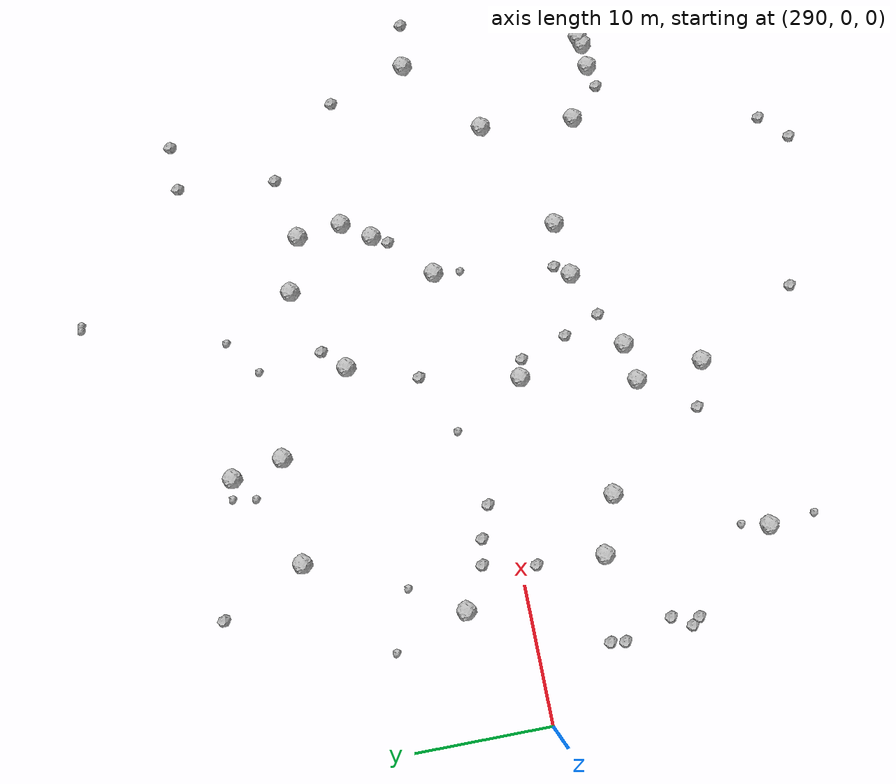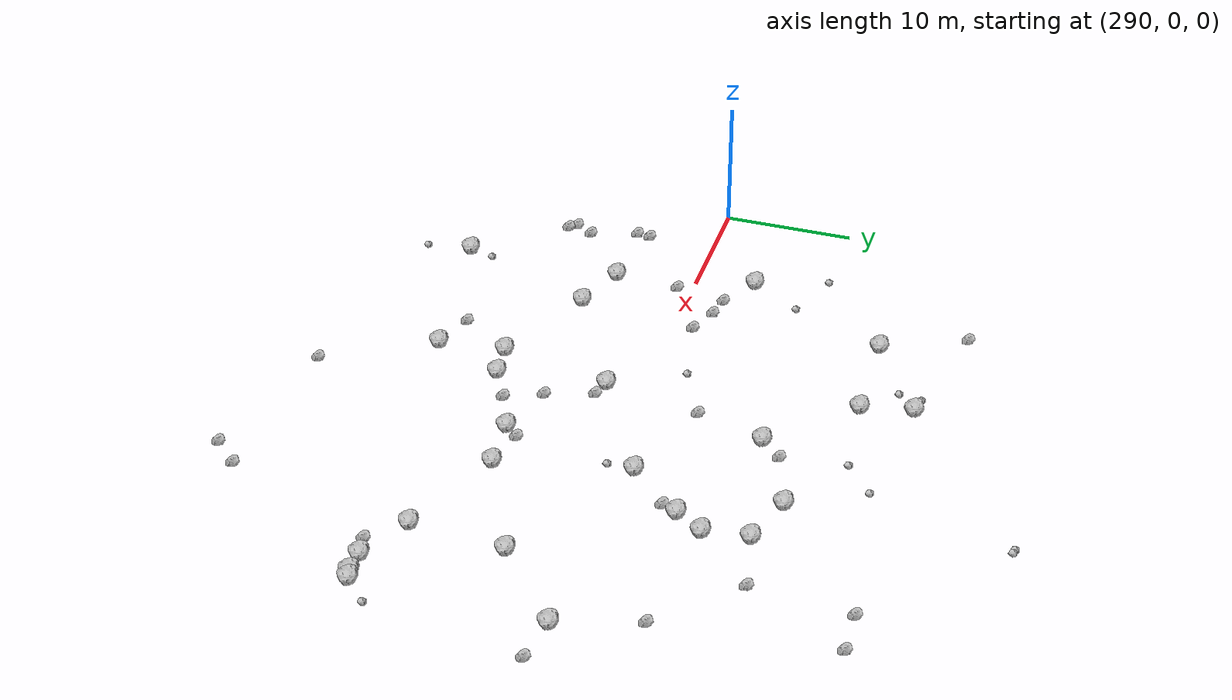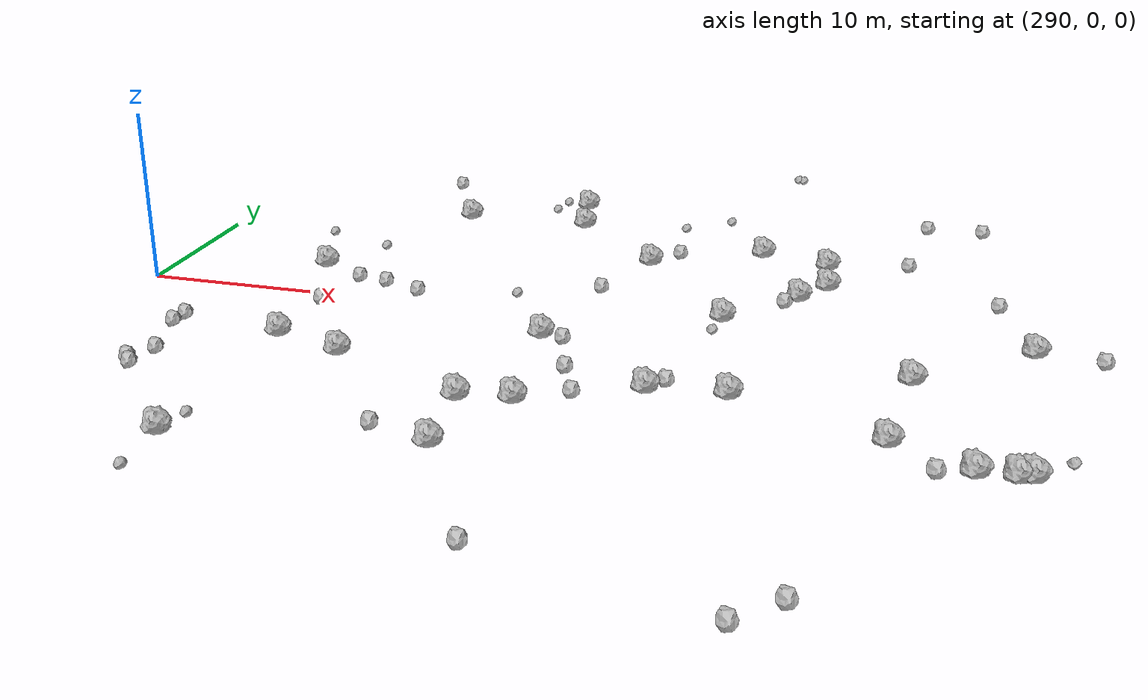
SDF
<sdf version="1.6">
 <world name="default">
  <include><uri>model://sun</uri></include>
  <model name="rock1_8_2">
   <include><uri>model://rock1</uri><pose>311.57835159520795 19.55722105199198 0.5 0 0 0</pose></include>
  </model>
  <model name="rock1_8_3">
   <include><uri>model://rock1</uri><pose>313.2291117161252 -11.161499316413451 0.5 0 0 0</pose></include>
  </model>
  <model name="rock1_8_4">
   <include><uri>model://rock1</uri><pose>324.1174505487467 2.1971228598309267 0.5 0 0 0</pose></include>
  </model>
  <model name="rock1_8_5">
   <include><uri>model://rock1</uri><pose>334.27996133699145 -10.702567122873855 0.5 0 0 0</pose></include>
  </model>
  <model name="rock1_8_6">
   <include><uri>model://rock1</uri><pose>316.06828683789007 -10.783402697122199 0.5 0 0 0</pose></include>
  </model>
  <model name="rock1_8_7">
   <include><uri>model://rock1</uri><pose>324.67889818562264 13.094487363727701 0.5 0 0 0</pose></include>
  </model>
  <model name="rock1_8_8">
   <include><uri>model://rock1</uri><pose>338.2995826673082 -12.690894569163067 0.5 0 0 0</pose></include>
  </model>
  <model name="rock1_8_9">
   <include><uri>model://rock1</uri><pose>322.0937932427368 -7.95614474470942 0.5 0 0 0</pose></include>
  </model>
  <model name="rock1_8_10">
   <include><uri>model://rock1</uri><pose>300.9559815260727 -18.301161767634337 0.5 0 0 0</pose></include>
  </model>
  <model name="rock1_8_11">
   <include><uri>model://rock1</uri><pose>299.07124221801564 4.505324784170888 0.5 0 0 0</pose></include>
  </model>
  <model name="rock1_8_12">
   <include><uri>model://rock1</uri><pose>340.9703815547611 1.5044408686055952 0.5 0 0 0</pose></include>
  </model>
  <model name="rock1_8_13">
   <include><uri>model://rock1</uri><pose>340.7935557446199 -12.482022723648342 0.5 0 0 0</pose></include>
  </model>
  <model name="rock1_8_14">
   <include><uri>model://rock1</uri><pose>334.9134456647022 -3.553613319131383 0.5 0 0 0</pose></include>
  </model>
  <model name="rock1_8_15">
   <include><uri>model://rock1</uri><pose>304.5488007572798 15.52112459571601 0.5 0 0 0</pose></include>
  </model>
  <model name="rock1_8_16">
   <include><uri>model://rock1</uri><pose>313.7616578368094 -16.206458737638684 0.5 0 0 0</pose></include>
  </model>
  <model name="rock1_8_17">
   <include><uri>model://rock1</uri><pose>312.3871483392803 15.72078147021773 0.5 0 0 0</pose></include>
  </model>
  <model name="rock1_8_18">
   <include><uri>model://rock1</uri><pose>326.23257900974215 -7.572836823037342 0.5 0 0 0</pose></include>
  </model>
  <model name="rock1_8_19">
   <include><uri>model://rock1</uri><pose>315.02530372839806 -2.6520002937793166 0.5 0 0 0</pose></include>
  </model>
  <model name="rock1_8_20">
   <include><uri>model://rock1</uri><pose>328.82959249619364 11.839115949814968 0.5 0 0 0</pose></include>
  </model>
  <model name="rock1_8_21">
   <include><uri>model://rock1</uri><pose>329.22630155711965 8.444324469955156 0.5 0 0 0</pose></include>
  </model>
  <model name="rock1_8_22">
   <include><uri>model://rock1</uri><pose>327.817141785299 6.318958988628886 0.5 0 0 0</pose></include>
  </model>
  <model name="rock1_8_23">
   <include><uri>model://rock1</uri><pose>340.1531281701098 -12.659864861376406 0.5 0 0 0</pose></include>
  </model>
  <model name="rock1_8_24">
   <include><uri>model://rock1</uri><pose>318.20441777976697 9.933972134757894 0.5 0 0 0</pose></include>
  </model>
  <model name="rock1_8_25">
   <include><uri>model://rock1</uri><pose>301.10237746381557 -6.123054633769019 0.5 0 0 0</pose></include>
  </model>
  <model name="rock1_8_26">
   <include><uri>model://rock1</uri><pose>305.27359189985856 -7.628806868054763 0.5 0 0 0</pose></include>
  </model>
  <model name="rock2_8_0">
   <include><uri>model://rock2</uri><pose>295.01455748524677 -11.272079228200099 0.3 0 0 0</pose></include>
  </model>
  <model name="rock2_8_1">
   <include><uri>model://rock2</uri><pose>302.0140105269651 2.7731917680378686 0.3 0 0 0</pose></include>
  </model>
  <model name="rock2_8_2">
   <include><uri>model://rock2</uri><pose>295.4980782524382 -11.864135936523322 0.3 0 0 0</pose></include>
  </model>
  <model name="rock2_8_3">
   <include><uri>model://rock2</uri><pose>316.3567206809599 -3.0540891874054097 0.3 0 0 0</pose></include>
  </model>
  <model name="rock2_8_4">
   <include><uri>model://rock2</uri><pose>316.4325081396206 4.746531709463454 0.3 0 0 0</pose></include>
  </model>
  <model name="rock2_8_5">
   <include><uri>model://rock2</uri><pose>318.1375639122092 -24.125515667498703 0.3 0 0 0</pose></include>
  </model>
  <model name="rock2_8_6">
   <include><uri>model://rock2</uri><pose>294.9399743149079 -5.208824186115894 0.3 0 0 0</pose></include>
  </model>
  <model name="rock2_8_7">
   <include><uri>model://rock2</uri><pose>338.98529024123803 7.532045932657411 0.3 0 0 0</pose></include>
  </model>
  <model name="rock2_8_8">
   <include><uri>model://rock2</uri><pose>322.9161894101615 -6.876335641737054 0.3 0 0 0</pose></include>
  </model>
  <model name="rock2_8_9">
   <include><uri>model://rock2</uri><pose>295.8551133966489 -9.86379385720647 0.3 0 0 0</pose></include>
  </model>
  <model name="rock2_8_10">
   <include><uri>model://rock2</uri><pose>329.73162015152656 -26.89534278747645 0.3 0 0 0</pose></include>
  </model>
  <model name="rock2_8_11">
   <include><uri>model://rock2</uri><pose>334.30571442387475 20.278650269794873 0.3 0 0 0</pose></include>
  </model>
  <model name="rock2_8_12">
   <include><uri>model://rock2</uri><pose>306.2062338320083 1.5162423449103173 0.3 0 0 0</pose></include>
  </model>
  <model name="rock2_8_13">
   <include><uri>model://rock2</uri><pose>331.65768525188827 -24.911392937811534 0.3 0 0 0</pose></include>
  </model>
  <model name="rock2_8_14">
   <include><uri>model://rock2</uri><pose>319.70688570341696 11.587097739647504 0.3 0 0 0</pose></include>
  </model>
  <model name="rock2_8_15">
   <include><uri>model://rock2</uri><pose>317.5225786143152 -6.604125893467881 0.3 0 0 0</pose></include>
  </model>
  <model name="rock2_8_16">
   <include><uri>model://rock2</uri><pose>327.14413533225155 5.1671760616130555 0.3 0 0 0</pose></include>
  </model>
  <model name="rock2_8_17">
   <include><uri>model://rock2</uri><pose>310.39037596265916 -15.153249658099238 0.3 0 0 0</pose></include>
  </model>
  <model name="rock2_8_18">
   <include><uri>model://rock2</uri><pose>303.86119196040823 2.425552351076533 0.3 0 0 0</pose></include>
  </model>
  <model name="rock2_8_19">
   <include><uri>model://rock2</uri><pose>336.5625476786617 -13.0532562964977 0.3 0 0 0</pose></include>
  </model>
  <model name="rock2_8_20">
   <include><uri>model://rock2</uri><pose>337.76049039540885 20.368911293906343 0.3 0 0 0</pose></include>
  </model>
  <model name="rock2_8_21">
   <include><uri>model://rock2</uri><pose>333.60236144049753 12.83214036785553 0.3 0 0 0</pose></include>
  </model>
  <model name="rock2_8_22">
   <include><uri>model://rock2</uri><pose>318.670398908864 -9.36898207929033 0.3 0 0 0</pose></include>
  </model>
  <model name="rock2_8_23">
   <include><uri>model://rock2</uri><pose>294.7950457726648 -6.27881406558086 0.3 0 0 0</pose></include>
  </model>
  <model name="rock2_8_24">
   <include><uri>model://rock2</uri><pose>301.6109380541418 21.752909422978583 0.3 0 0 0</pose></include>
  </model>
  <model name="rock2_8_25">
   <include><uri>model://rock2</uri><pose>301.28762735140606 -1.1122995434502343 0.3 0 0 0</pose></include>
  </model>
  <model name="rock2_8_26">
   <include><uri>model://rock2</uri><pose>344.4266915584581 1.0358830642166552 0.3 0 0 0</pose></include>
  </model>
  <model name="rock3_8_0">
   <include><uri>model://rock3</uri><pose>310.041129300433 19.806039660620883 0.2 0 0 0</pose></include>
  </model>
  <model name="rock3_8_1">
   <include><uri>model://rock3</uri><pose>301.1680520161441 -21.840763549110363 0.2 0 0 0</pose></include>
  </model>
  <model name="rock3_8_2">
   <include><uri>model://rock3</uri><pose>311.89234918454844 2.641669787791322 0.2 0 0 0</pose></include>
  </model>
  <model name="rock3_8_3">
   <include><uri>model://rock3</uri><pose>323.87996445089163 0.16917218729293282 0.2 0 0 0</pose></include>
  </model>
  <model name="rock3_8_4">
   <include><uri>model://rock3</uri><pose>325.0109651096855 28.963647138814125 0.2 0 0 0</pose></include>
  </model>
  <model name="rock3_8_5">
   <include><uri>model://rock3</uri><pose>301.3366934574196 -16.399878942079745 0.2 0 0 0</pose></include>
  </model>
  <model name="rock3_8_6">
   <include><uri>model://rock3</uri><pose>321.6624229730068 18.471481811311335 0.2 0 0 0</pose></include>
  </model>
  <model name="rock3_8_7">
   <include><uri>model://rock3</uri><pose>342.510730965211 -10.772793462677342 0.2 0 0 0</pose></include>
  </model>
  <model name="rock3_8_8">
   <include><uri>model://rock3</uri><pose>297.035501221973 9.952370393804841 0.2 0 0 0</pose></include>
  </model>
  <model name="rock3_8_9">
   <include><uri>model://rock3</uri><pose>324.65501455745476 29.046631735346864 0.2 0 0 0</pose></include>
  </model>
  <model name="rock3_8_10">
   <include><uri>model://rock3</uri><pose>301.33660481890394 8.327267904954269 0.2 0 0 0</pose></include>
  </model>
  <model name="rock3_8_11">
   <include><uri>model://rock3</uri><pose>309.74783050077735 18.100386162752613 0.2 0 0 0</pose></include>
  </model>
  <model name="rock3_8_12">
   <include><uri>model://rock3</uri><pose>319.03817197522545 16.396175948495916 0.2 0 0 0</pose></include>
  </model>
 </world>
</sdf>
